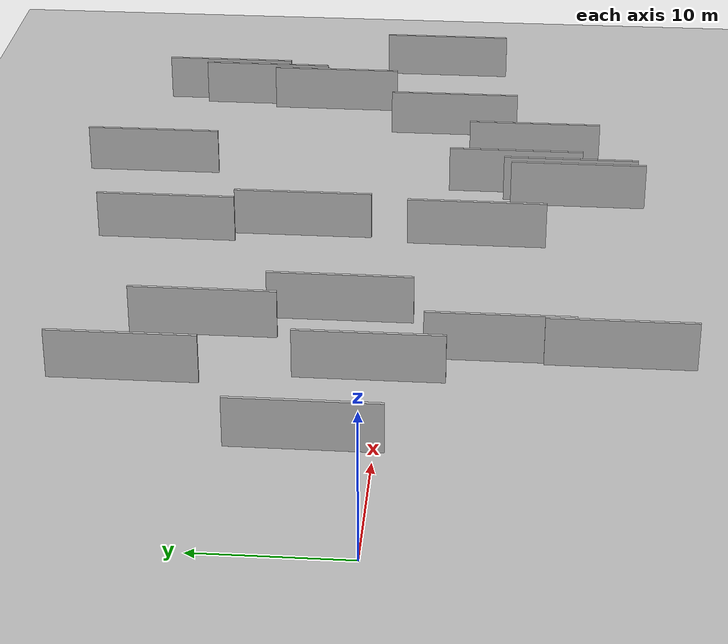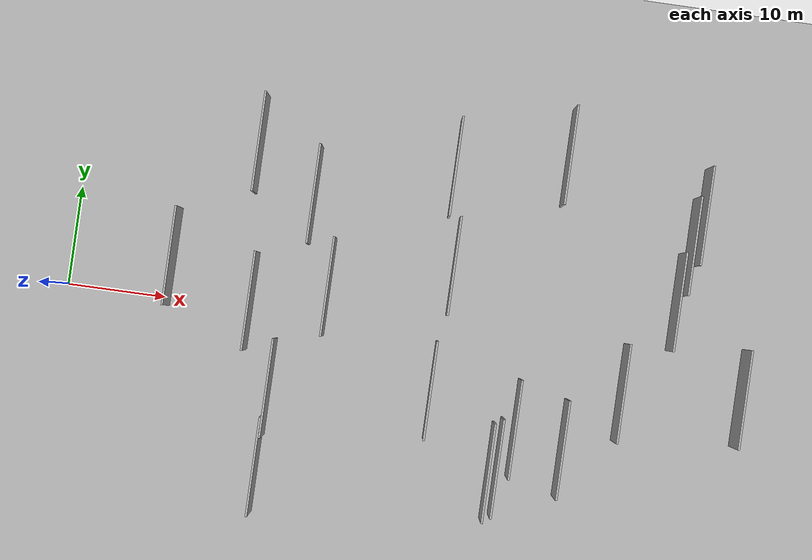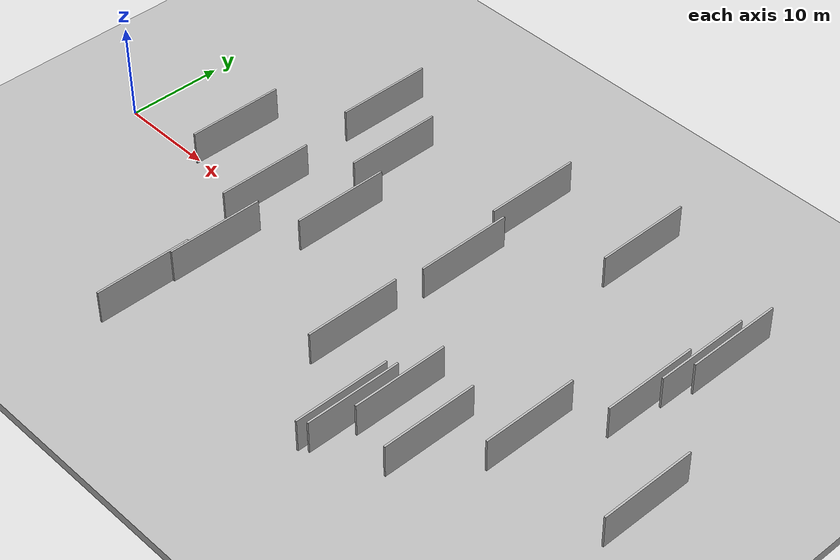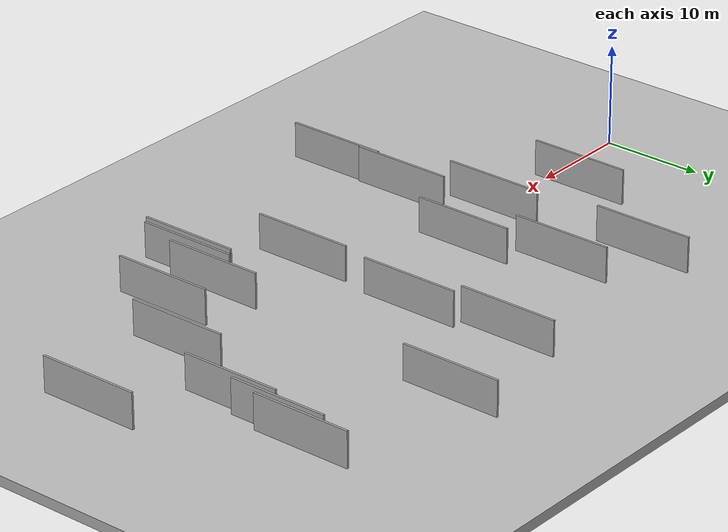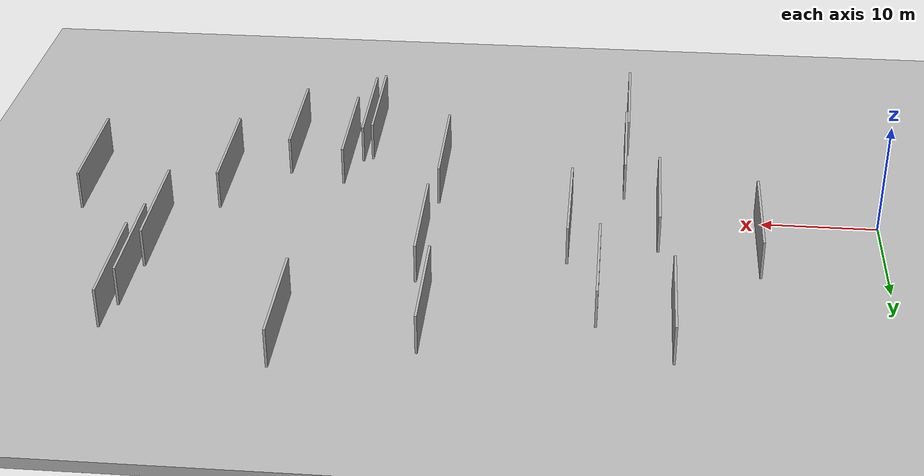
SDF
<?xml version="1.0" encoding="utf-8"?>

<sdf version="1.6">

   <world name="default">

      <gui fullscreen="0">

         <camera name="user_camera">

            <pose>-15 0 4.57585 0 0 0</pose>

            <view_controller>orbit</view_controller>

         </camera>

      </gui>

      <scene>

         <sky>

           <clouds>

             <speed>12</speed>

           </clouds>

         </sky>

         <ambient>0.4 0.4 0.4 1</ambient>

         <background>0.7 0.7 0.7 1</background>

         <shadows>1</shadows>

      </scene>

      <gravity>0 0 -9.8066</gravity>

      <magnetic_field>6e-06 2.3e-05 -4.2e-05</magnetic_field>

      <physics default="0" name="default_physics" type="ode">

         <ode>

            <solver>

               <type>quick</type>

               <iters>10</iters>

               <sor>1.0</sor>

               <use_dynamic_moi_rescaling>0</use_dynamic_moi_rescaling>

            </solver>

            <constraints>

               <cfm>0</cfm>

               <erp>0.2</erp>

               <contact_max_correcting_vel>100</contact_max_correcting_vel>

               <contact_surface_layer>0.001</contact_surface_layer>

            </constraints>

         </ode>

         <max_step_size>0.004</max_step_size>

         <real_time_factor>1</real_time_factor>

         <real_time_update_rate>250</real_time_update_rate>

      </physics>

      <light name="sun" type="directional">

         <cast_shadows>1</cast_shadows>

         <pose>0 0 10 0 0 0</pose>

         <diffuse>0.8 0.8 0.8 1</diffuse>

         <specular>0.2 0.2 0.2 1</specular>

         <attenuation>

            <range>1000</range>

            <constant>0.9</constant>

            <linear>0.01</linear>

            <quadratic>0.001</quadratic>

         </attenuation>

         <direction>-0.5 0.1 -0.9</direction>

      </light>

      <include>

         <name>ground_plane_1</name>

         <uri>model://HANNAS_ground_plane</uri>

         <pose>0 0 0  0 0 0</pose>

      </include>

      <include>

         <name>ground_plane_2</name>

         <uri>model://HANNAS_ground_plane</uri>

         <pose>100 0 0  0 0 0</pose>

      </include>

      <model name="HANNAS_wall_1">

         <static>1</static>

         <pose frame="">23.8907 12.3705 0.0 0.000000 0.000000 1.570796</pose>

         <link name="link">

            <pose frame="">0 0 2.00 0 0 0</pose>

            <collision name="collision">

               <geometry>

                  <box>

                     <size>10.00 0.2 4.00</size>

                  </box>

               </geometry>

               <max_contacts>10</max_contacts>

               <surface>

                  <contact>

                     <ode/>

                  </contact>

                  <bounce/>

                  <friction>

                     <torsional>

                        <ode/>

                     </torsional>

                     <ode/>

                  </friction>

               </surface>

            </collision>

            <visual name="visual">

               <cast_shadows>0</cast_shadows>

               <geometry>

                  <box>

                     <size>10.00 0.2 4.00</size>

                  </box>

               </geometry>

               <material>

                  <script>

                     <uri>model://HANNAS_wall/materials/scripts</uri>

                     <uri>model://HANNAS_wall/materials/textures</uri>

                     <name>vrc/HANNAS_wall</name>

                  </script>

               </material>

            </visual>

            <self_collide>0</self_collide>

            <enable_wind>0</enable_wind>

            <kinematic>0</kinematic>

         </link>

      </model>

      <model name="HANNAS_wall_2">

         <static>1</static>

         <pose frame="">38.1678 -5.4554 0.0 0.000000 0.000000 1.570796</pose>

         <link name="link">

            <pose frame="">0 0 2.00 0 0 0</pose>

            <collision name="collision">

               <geometry>

                  <box>

                     <size>10.00 0.2 4.00</size>

                  </box>

               </geometry>

               <max_contacts>10</max_contacts>

               <surface>

                  <contact>

                     <ode/>

                  </contact>

                  <bounce/>

                  <friction>

                     <torsional>

                        <ode/>

                     </torsional>

                     <ode/>

                  </friction>

               </surface>

            </collision>

            <visual name="visual">

               <cast_shadows>0</cast_shadows>

               <geometry>

                  <box>

                     <size>10.00 0.2 4.00</size>

                  </box>

               </geometry>

               <material>

                  <script>

                     <uri>model://HANNAS_wall/materials/scripts</uri>

                     <uri>model://HANNAS_wall/materials/textures</uri>

                     <name>vrc/HANNAS_wall</name>

                  </script>

               </material>

            </visual>

            <self_collide>0</self_collide>

            <enable_wind>0</enable_wind>

            <kinematic>0</kinematic>

         </link>

      </model>

      <model name="HANNAS_wall_3">

         <static>1</static>

         <pose frame="">45.8196 -12.2393 0.0 0.000000 0.000000 1.570796</pose>

         <link name="link">

            <pose frame="">0 0 2.00 0 0 0</pose>

            <collision name="collision">

               <geometry>

                  <box>

                     <size>10.00 0.2 4.00</size>

                  </box>

               </geometry>

               <max_contacts>10</max_contacts>

               <surface>

                  <contact>

                     <ode/>

                  </contact>

                  <bounce/>

                  <friction>

                     <torsional>

                        <ode/>

                     </torsional>

                     <ode/>

                  </friction>

               </surface>

            </collision>

            <visual name="visual">

               <cast_shadows>0</cast_shadows>

               <geometry>

                  <box>

                     <size>10.00 0.2 4.00</size>

                  </box>

               </geometry>

               <material>

                  <script>

                     <uri>model://HANNAS_wall/materials/scripts</uri>

                     <uri>model://HANNAS_wall/materials/textures</uri>

                     <name>vrc/HANNAS_wall</name>

                  </script>

               </material>

            </visual>

            <self_collide>0</self_collide>

            <enable_wind>0</enable_wind>

            <kinematic>0</kinematic>

         </link>

      </model>

      <model name="HANNAS_wall_4">

         <static>1</static>

         <pose frame="">52.0283 -9.4851 0.0 0.000000 0.000000 1.570796</pose>

         <link name="link">

            <pose frame="">0 0 2.00 0 0 0</pose>

            <collision name="collision">

               <geometry>

                  <box>

                     <size>10.00 0.2 4.00</size>

                  </box>

               </geometry>

               <max_contacts>10</max_contacts>

               <surface>

                  <contact>

                     <ode/>

                  </contact>

                  <bounce/>

                  <friction>

                     <torsional>

                        <ode/>

                     </torsional>

                     <ode/>

                  </friction>

               </surface>

            </collision>

            <visual name="visual">

               <cast_shadows>0</cast_shadows>

               <geometry>

                  <box>

                     <size>10.00 0.2 4.00</size>

                  </box>

               </geometry>

               <material>

                  <script>

                     <uri>model://HANNAS_wall/materials/scripts</uri>

                     <uri>model://HANNAS_wall/materials/textures</uri>

                     <name>vrc/HANNAS_wall</name>

                  </script>

               </material>

            </visual>

            <self_collide>0</self_collide>

            <enable_wind>0</enable_wind>

            <kinematic>0</kinematic>

         </link>

      </model>

      <model name="HANNAS_wall_5">

         <static>1</static>

         <pose frame="">18.9541 0.8942 0.0 0.000000 0.000000 1.570796</pose>

         <link name="link">

            <pose frame="">0 0 2.00 0 0 0</pose>

            <collision name="collision">

               <geometry>

                  <box>

                     <size>10.00 0.2 4.00</size>

                  </box>

               </geometry>

               <max_contacts>10</max_contacts>

               <surface>

                  <contact>

                     <ode/>

                  </contact>

                  <bounce/>

                  <friction>

                     <torsional>

                        <ode/>

                     </torsional>

                     <ode/>

                  </friction>

               </surface>

            </collision>

            <visual name="visual">

               <cast_shadows>0</cast_shadows>

               <geometry>

                  <box>

                     <size>10.00 0.2 4.00</size>

                  </box>

               </geometry>

               <material>

                  <script>

                     <uri>model://HANNAS_wall/materials/scripts</uri>

                     <uri>model://HANNAS_wall/materials/textures</uri>

                     <name>vrc/HANNAS_wall</name>

                  </script>

               </material>

            </visual>

            <self_collide>0</self_collide>

            <enable_wind>0</enable_wind>

            <kinematic>0</kinematic>

         </link>

      </model>

      <model name="HANNAS_wall_6">

         <static>1</static>

         <pose frame="">57.2342 -3.0763 0.0 0.000000 0.000000 1.570796</pose>

         <link name="link">

            <pose frame="">0 0 2.00 0 0 0</pose>

            <collision name="collision">

               <geometry>

                  <box>

                     <size>10.00 0.2 4.00</size>

                  </box>

               </geometry>

               <max_contacts>10</max_contacts>

               <surface>

                  <contact>

                     <ode/>

                  </contact>

                  <bounce/>

                  <friction>

                     <torsional>

                        <ode/>

                     </torsional>

                     <ode/>

                  </friction>

               </surface>

            </collision>

            <visual name="visual">

               <cast_shadows>0</cast_shadows>

               <geometry>

                  <box>

                     <size>10.00 0.2 4.00</size>

                  </box>

               </geometry>

               <material>

                  <script>

                     <uri>model://HANNAS_wall/materials/scripts</uri>

                     <uri>model://HANNAS_wall/materials/textures</uri>

                     <name>vrc/HANNAS_wall</name>

                  </script>

               </material>

            </visual>

            <self_collide>0</self_collide>

            <enable_wind>0</enable_wind>

            <kinematic>0</kinematic>

         </link>

      </model>

      <model name="HANNAS_wall_7">

         <static>1</static>

         <pose frame="">45.0174 -12.7938 0.0 0.000000 0.000000 1.570796</pose>

         <link name="link">

            <pose frame="">0 0 2.00 0 0 0</pose>

            <collision name="collision">

               <geometry>

                  <box>

                     <size>10.00 0.2 4.00</size>

                  </box>

               </geometry>

               <max_contacts>10</max_contacts>

               <surface>

                  <contact>

                     <ode/>

                  </contact>

                  <bounce/>

                  <friction>

                     <torsional>

                        <ode/>

                     </torsional>

                     <ode/>

                  </friction>

               </surface>

            </collision>

            <visual name="visual">

               <cast_shadows>0</cast_shadows>

               <geometry>

                  <box>

                     <size>10.00 0.2 4.00</size>

                  </box>

               </geometry>

               <material>

                  <script>

                     <uri>model://HANNAS_wall/materials/scripts</uri>

                     <uri>model://HANNAS_wall/materials/textures</uri>

                     <name>vrc/HANNAS_wall</name>

                  </script>

               </material>

            </visual>

            <self_collide>0</self_collide>

            <enable_wind>0</enable_wind>

            <kinematic>0</kinematic>

         </link>

      </model>

      <model name="HANNAS_wall_8">

         <static>1</static>

         <pose frame="">47.0520 -8.1262 0.0 0.000000 0.000000 1.570796</pose>

         <link name="link">

            <pose frame="">0 0 2.00 0 0 0</pose>

            <collision name="collision">

               <geometry>

                  <box>

                     <size>10.00 0.2 4.00</size>

                  </box>

               </geometry>

               <max_contacts>10</max_contacts>

               <surface>

                  <contact>

                     <ode/>

                  </contact>

                  <bounce/>

                  <friction>

                     <torsional>

                        <ode/>

                     </torsional>

                     <ode/>

                  </friction>

               </surface>

            </collision>

            <visual name="visual">

               <cast_shadows>0</cast_shadows>

               <geometry>

                  <box>

                     <size>10.00 0.2 4.00</size>

                  </box>

               </geometry>

               <material>

                  <script>

                     <uri>model://HANNAS_wall/materials/scripts</uri>

                     <uri>model://HANNAS_wall/materials/textures</uri>

                     <name>vrc/HANNAS_wall</name>

                  </script>

               </material>

            </visual>

            <self_collide>0</self_collide>

            <enable_wind>0</enable_wind>

            <kinematic>0</kinematic>

         </link>

      </model>

      <model name="HANNAS_wall_9">

         <static>1</static>

         <pose frame="">69.2798 -1.9915 0.0 0.000000 0.000000 1.570796</pose>

         <link name="link">

            <pose frame="">0 0 2.00 0 0 0</pose>

            <collision name="collision">

               <geometry>

                  <box>

                     <size>10.00 0.2 4.00</size>

                  </box>

               </geometry>

               <max_contacts>10</max_contacts>

               <surface>

                  <contact>

                     <ode/>

                  </contact>

                  <bounce/>

                  <friction>

                     <torsional>

                        <ode/>

                     </torsional>

                     <ode/>

                  </friction>

               </surface>

            </collision>

            <visual name="visual">

               <cast_shadows>0</cast_shadows>

               <geometry>

                  <box>

                     <size>10.00 0.2 4.00</size>

                  </box>

               </geometry>

               <material>

                  <script>

                     <uri>model://HANNAS_wall/materials/scripts</uri>

                     <uri>model://HANNAS_wall/materials/textures</uri>

                     <name>vrc/HANNAS_wall</name>

                  </script>

               </material>

            </visual>

            <self_collide>0</self_collide>

            <enable_wind>0</enable_wind>

            <kinematic>0</kinematic>

         </link>

      </model>

      <model name="HANNAS_wall_10">

         <static>1</static>

         <pose frame="">26.5425 3.3984 0.0 0.000000 0.000000 1.570796</pose>

         <link name="link">

            <pose frame="">0 0 2.00 0 0 0</pose>

            <collision name="collision">

               <geometry>

                  <box>

                     <size>10.00 0.2 4.00</size>

                  </box>

               </geometry>

               <max_contacts>10</max_contacts>

               <surface>

                  <contact>

                     <ode/>

                  </contact>

                  <bounce/>

                  <friction>

                     <torsional>

                        <ode/>

                     </torsional>

                     <ode/>

                  </friction>

               </surface>

            </collision>

            <visual name="visual">

               <cast_shadows>0</cast_shadows>

               <geometry>

                  <box>

                     <size>10.00 0.2 4.00</size>

                  </box>

               </geometry>

               <material>

                  <script>

                     <uri>model://HANNAS_wall/materials/scripts</uri>

                     <uri>model://HANNAS_wall/materials/textures</uri>

                     <name>vrc/HANNAS_wall</name>

                  </script>

               </material>

            </visual>

            <self_collide>0</self_collide>

            <enable_wind>0</enable_wind>

            <kinematic>0</kinematic>

         </link>

      </model>

      <model name="HANNAS_wall_11">

         <static>1</static>

         <pose frame="">62.2012 12.4944 0.0 0.000000 0.000000 1.570796</pose>

         <link name="link">

            <pose frame="">0 0 2.00 0 0 0</pose>

            <collision name="collision">

               <geometry>

                  <box>

                     <size>10.00 0.2 4.00</size>

                  </box>

               </geometry>

               <max_contacts>10</max_contacts>

               <surface>

                  <contact>

                     <ode/>

                  </contact>

                  <bounce/>

                  <friction>

                     <torsional>

                        <ode/>

                     </torsional>

                     <ode/>

                  </friction>

               </surface>

            </collision>

            <visual name="visual">

               <cast_shadows>0</cast_shadows>

               <geometry>

                  <box>

                     <size>10.00 0.2 4.00</size>

                  </box>

               </geometry>

               <material>

                  <script>

                     <uri>model://HANNAS_wall/materials/scripts</uri>

                     <uri>model://HANNAS_wall/materials/textures</uri>

                     <name>vrc/HANNAS_wall</name>

                  </script>

               </material>

            </visual>

            <self_collide>0</self_collide>

            <enable_wind>0</enable_wind>

            <kinematic>0</kinematic>

         </link>

      </model>

      <model name="HANNAS_wall_12">

         <static>1</static>

         <pose frame="">48.7458 19.7662 0.0 0.000000 0.000000 1.570796</pose>

         <link name="link">

            <pose frame="">0 0 2.00 0 0 0</pose>

            <collision name="collision">

               <geometry>

                  <box>

                     <size>10.00 0.2 4.00</size>

                  </box>

               </geometry>

               <max_contacts>10</max_contacts>

               <surface>

                  <contact>

                     <ode/>

                  </contact>

                  <bounce/>

                  <friction>

                     <torsional>

                        <ode/>

                     </torsional>

                     <ode/>

                  </friction>

               </surface>

            </collision>

            <visual name="visual">

               <cast_shadows>0</cast_shadows>

               <geometry>

                  <box>

                     <size>10.00 0.2 4.00</size>

                  </box>

               </geometry>

               <material>

                  <script>

                     <uri>model://HANNAS_wall/materials/scripts</uri>

                     <uri>model://HANNAS_wall/materials/textures</uri>

                     <name>vrc/HANNAS_wall</name>

                  </script>

               </material>

            </visual>

            <self_collide>0</self_collide>

            <enable_wind>0</enable_wind>

            <kinematic>0</kinematic>

         </link>

      </model>

      <model name="HANNAS_wall_13">

         <static>1</static>

         <pose frame="">17.7763 16.7626 0.0 0.000000 0.000000 1.570796</pose>

         <link name="link">

            <pose frame="">0 0 2.00 0 0 0</pose>

            <collision name="collision">

               <geometry>

                  <box>

                     <size>10.00 0.2 4.00</size>

                  </box>

               </geometry>

               <max_contacts>10</max_contacts>

               <surface>

                  <contact>

                     <ode/>

                  </contact>

                  <bounce/>

                  <friction>

                     <torsional>

                        <ode/>

                     </torsional>

                     <ode/>

                  </friction>

               </surface>

            </collision>

            <visual name="visual">

               <cast_shadows>0</cast_shadows>

               <geometry>

                  <box>

                     <size>10.00 0.2 4.00</size>

                  </box>

               </geometry>

               <material>

                  <script>

                     <uri>model://HANNAS_wall/materials/scripts</uri>

                     <uri>model://HANNAS_wall/materials/textures</uri>

                     <name>vrc/HANNAS_wall</name>

                  </script>

               </material>

            </visual>

            <self_collide>0</self_collide>

            <enable_wind>0</enable_wind>

            <kinematic>0</kinematic>

         </link>

      </model>

      <model name="HANNAS_wall_14">

         <static>1</static>

         <pose frame="">62.9696 15.6375 0.0 0.000000 0.000000 1.570796</pose>

         <link name="link">

            <pose frame="">0 0 2.00 0 0 0</pose>

            <collision name="collision">

               <geometry>

                  <box>

                     <size>10.00 0.2 4.00</size>

                  </box>

               </geometry>

               <max_contacts>10</max_contacts>

               <surface>

                  <contact>

                     <ode/>

                  </contact>

                  <bounce/>

                  <friction>

                     <torsional>

                        <ode/>

                     </torsional>

                     <ode/>

                  </friction>

               </surface>

            </collision>

            <visual name="visual">

               <cast_shadows>0</cast_shadows>

               <geometry>

                  <box>

                     <size>10.00 0.2 4.00</size>

                  </box>

               </geometry>

               <material>

                  <script>

                     <uri>model://HANNAS_wall/materials/scripts</uri>

                     <uri>model://HANNAS_wall/materials/textures</uri>

                     <name>vrc/HANNAS_wall</name>

                  </script>

               </material>

            </visual>

            <self_collide>0</self_collide>

            <enable_wind>0</enable_wind>

            <kinematic>0</kinematic>

         </link>

      </model>

      <model name="HANNAS_wall_15">

         <static>1</static>

         <pose frame="">21.9398 -7.4894 0.0 0.000000 0.000000 1.570796</pose>

         <link name="link">

            <pose frame="">0 0 2.00 0 0 0</pose>

            <collision name="collision">

               <geometry>

                  <box>

                     <size>10.00 0.2 4.00</size>

                  </box>

               </geometry>

               <max_contacts>10</max_contacts>

               <surface>

                  <contact>

                     <ode/>

                  </contact>

                  <bounce/>

                  <friction>

                     <torsional>

                        <ode/>

                     </torsional>

                     <ode/>

                  </friction>

               </surface>

            </collision>

            <visual name="visual">

               <cast_shadows>0</cast_shadows>

               <geometry>

                  <box>

                     <size>10.00 0.2 4.00</size>

                  </box>

               </geometry>

               <material>

                  <script>

                     <uri>model://HANNAS_wall/materials/scripts</uri>

                     <uri>model://HANNAS_wall/materials/textures</uri>

                     <name>vrc/HANNAS_wall</name>

                  </script>

               </material>

            </visual>

            <self_collide>0</self_collide>

            <enable_wind>0</enable_wind>

            <kinematic>0</kinematic>

         </link>

      </model>

      <model name="HANNAS_wall_16">

         <static>1</static>

         <pose frame="">37.5809 17.0366 0.0 0.000000 0.000000 1.570796</pose>

         <link name="link">

            <pose frame="">0 0 2.00 0 0 0</pose>

            <collision name="collision">

               <geometry>

                  <box>

                     <size>10.00 0.2 4.00</size>

                  </box>

               </geometry>

               <max_contacts>10</max_contacts>

               <surface>

                  <contact>

                     <ode/>

                  </contact>

                  <bounce/>

                  <friction>

                     <torsional>

                        <ode/>

                     </torsional>

                     <ode/>

                  </friction>

               </surface>

            </collision>

            <visual name="visual">

               <cast_shadows>0</cast_shadows>

               <geometry>

                  <box>

                     <size>10.00 0.2 4.00</size>

                  </box>

               </geometry>

               <material>

                  <script>

                     <uri>model://HANNAS_wall/materials/scripts</uri>

                     <uri>model://HANNAS_wall/materials/textures</uri>

                     <name>vrc/HANNAS_wall</name>

                  </script>

               </material>

            </visual>

            <self_collide>0</self_collide>

            <enable_wind>0</enable_wind>

            <kinematic>0</kinematic>

         </link>

      </model>

      <model name="HANNAS_wall_17">

         <static>1</static>

         <pose frame="">38.7890 7.1832 0.0 0.000000 0.000000 1.570796</pose>

         <link name="link">

            <pose frame="">0 0 2.00 0 0 0</pose>

            <collision name="collision">

               <geometry>

                  <box>

                     <size>10.00 0.2 4.00</size>

                  </box>

               </geometry>

               <max_contacts>10</max_contacts>

               <surface>

                  <contact>

                     <ode/>

                  </contact>

                  <bounce/>

                  <friction>

                     <torsional>

                        <ode/>

                     </torsional>

                     <ode/>

                  </friction>

               </surface>

            </collision>

            <visual name="visual">

               <cast_shadows>0</cast_shadows>

               <geometry>

                  <box>

                     <size>10.00 0.2 4.00</size>

                  </box>

               </geometry>

               <material>

                  <script>

                     <uri>model://HANNAS_wall/materials/scripts</uri>

                     <uri>model://HANNAS_wall/materials/textures</uri>

                     <name>vrc/HANNAS_wall</name>

                  </script>

               </material>

            </visual>

            <self_collide>0</self_collide>

            <enable_wind>0</enable_wind>

            <kinematic>0</kinematic>

         </link>

      </model>

      <model name="HANNAS_wall_18">

         <static>1</static>

         <pose frame="">10.5348 4.2636 0.0 0.000000 0.000000 1.570796</pose>

         <link name="link">

            <pose frame="">0 0 2.00 0 0 0</pose>

            <collision name="collision">

               <geometry>

                  <box>

                     <size>10.00 0.2 4.00</size>

                  </box>

               </geometry>

               <max_contacts>10</max_contacts>

               <surface>

                  <contact>

                     <ode/>

                  </contact>

                  <bounce/>

                  <friction>

                     <torsional>

                        <ode/>

                     </torsional>

                     <ode/>

                  </friction>

               </surface>

            </collision>

            <visual name="visual">

               <cast_shadows>0</cast_shadows>

               <geometry>

                  <box>

                     <size>10.00 0.2 4.00</size>

                  </box>

               </geometry>

               <material>

                  <script>

                     <uri>model://HANNAS_wall/materials/scripts</uri>

                     <uri>model://HANNAS_wall/materials/textures</uri>

                     <name>vrc/HANNAS_wall</name>

                  </script>

               </material>

            </visual>

            <self_collide>0</self_collide>

            <enable_wind>0</enable_wind>

            <kinematic>0</kinematic>

         </link>

      </model>

      <model name="HANNAS_wall_19">

         <static>1</static>

         <pose frame="">21.7387 -15.3866 0.0 0.000000 0.000000 1.570796</pose>

         <link name="link">

            <pose frame="">0 0 2.00 0 0 0</pose>

            <collision name="collision">

               <geometry>

                  <box>

                     <size>10.00 0.2 4.00</size>

                  </box>

               </geometry>

               <max_contacts>10</max_contacts>

               <surface>

                  <contact>

                     <ode/>

                  </contact>

                  <bounce/>

                  <friction>

                     <torsional>

                        <ode/>

                     </torsional>

                     <ode/>

                  </friction>

               </surface>

            </collision>

            <visual name="visual">

               <cast_shadows>0</cast_shadows>

               <geometry>

                  <box>

                     <size>10.00 0.2 4.00</size>

                  </box>

               </geometry>

               <material>

                  <script>

                     <uri>model://HANNAS_wall/materials/scripts</uri>

                     <uri>model://HANNAS_wall/materials/textures</uri>

                     <name>vrc/HANNAS_wall</name>

                  </script>

               </material>

            </visual>

            <self_collide>0</self_collide>

            <enable_wind>0</enable_wind>

            <kinematic>0</kinematic>

         </link>

      </model>

      <model name="HANNAS_wall_20">

         <static>1</static>

         <pose frame="">61.5063 6.7675 0.0 0.000000 0.000000 1.570796</pose>

         <link name="link">

            <pose frame="">0 0 2.00 0 0 0</pose>

            <collision name="collision">

               <geometry>

                  <box>

                     <size>10.00 0.2 4.00</size>

                  </box>

               </geometry>

               <max_contacts>10</max_contacts>

               <surface>

                  <contact>

                     <ode/>

                  </contact>

                  <bounce/>

                  <friction>

                     <torsional>

                        <ode/>

                     </torsional>

                     <ode/>

                  </friction>

               </surface>

            </collision>

            <visual name="visual">

               <cast_shadows>0</cast_shadows>

               <geometry>

                  <box>

                     <size>10.00 0.2 4.00</size>

                  </box>

               </geometry>

               <material>

                  <script>

                     <uri>model://HANNAS_wall/materials/scripts</uri>

                     <uri>model://HANNAS_wall/materials/textures</uri>

                     <name>vrc/HANNAS_wall</name>

                  </script>

               </material>

            </visual>

            <self_collide>0</self_collide>

            <enable_wind>0</enable_wind>

            <kinematic>0</kinematic>

         </link>

      </model>

   </world>

</sdf>

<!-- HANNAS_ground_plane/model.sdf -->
<sdf version="1.4">
<model name="HANNAS_ground_plane">
  <static>true</static>
    <link name="link">
      <collision name="collision">
        <geometry>
          <plane>
            <normal>0 0 1</normal>
            <size>1000 1000</size>
          </plane>
        </geometry>
        <surface>
          <friction>
            <ode>
              <mu>100</mu>
              <mu2>50</mu2>
            </ode>
          </friction>
        </surface>
      </collision>
      <visual name="visual">
        <cast_shadows>false</cast_shadows>
        <geometry>
          <plane>
            <normal>0 0 1</normal>
            <size>1000 1000</size>
          </plane>
        </geometry>
        <material>
          <script>
            <uri>model://HANNAS_ground_plane/materials/scripts/HANNAS_ground_plane.material</uri>
	    <uri>model://HANNAS_ground_plane/materials/textures</uri>
            <name>HANNASGroundPlane/Image</name>
          </script>
        </material>
      </visual>
    </link>
  </model>
</sdf>
